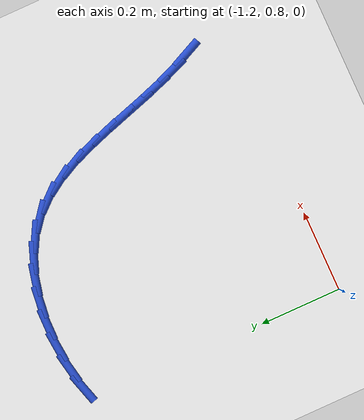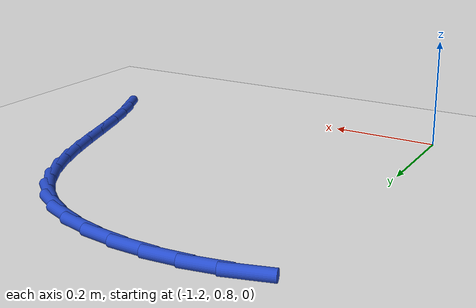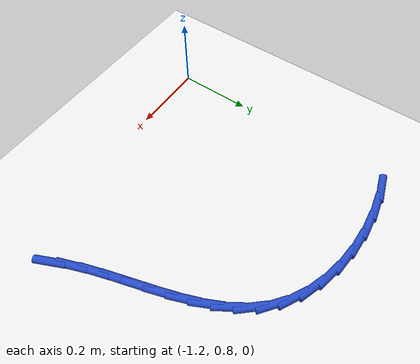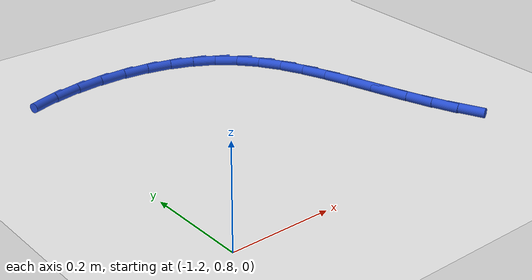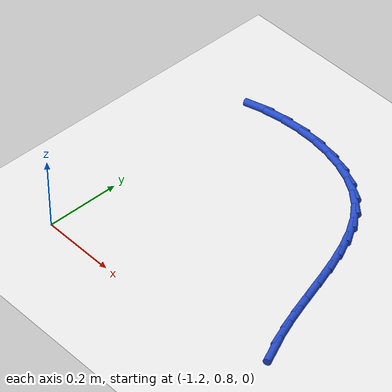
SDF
<sdf version="1.6">
 <world name="default">
  <model name="ground_plane">
   <static>1</static>
   <link name="link">
    <collision name="collision">
     <geometry><plane><normal>0 0 1</normal><size>100 100</size></plane></geometry>
     <surface><friction><ode><mu>100</mu><mu2>50</mu2></ode></friction></surface>
    </collision>
    <visual name="visual">
     <cast_shadows>0</cast_shadows>
     <geometry><plane><normal>0 0 1</normal><size>100 100</size></plane></geometry>
     <material>
      <script><uri>file://media/materials/scripts/gazebo.material</uri><name>Gazebo/WhiteGlow</name></script>
     </material>
    </visual>
   </link>
  </model>
  <model name="line">
   <link name="link_21">
    <pose>-0.5409754587103622 0.8979990045110348 0.01 0 1.57 -1.139596820807599</pose>
    <collision name="collision">
     <geometry><cylinder><radius>0.01</radius><length>0.08</length></cylinder></geometry>
    </collision>
    <visual name="visual">
     <material>
      <script><name>Gazebo/Blue</name><uri>file://media/materials/scripts/gazebo.material</uri></script>
     </material>
     <geometry><cylinder><radius>0.01</radius><length>0.08</length></cylinder></geometry>
    </visual>
   </link>
   <link name="link_22">
    <pose>-0.5632345159282068 0.9463805156341539 0.01 0 1.57 -1.208715671980354</pose>
    <collision name="collision">
     <geometry><cylinder><radius>0.01</radius><length>0.08</length></cylinder></geometry>
    </collision>
    <visual name="visual">
     <material>
      <script><name>Gazebo/Blue</name><uri>file://media/materials/scripts/gazebo.material</uri></script>
     </material>
     <geometry><cylinder><radius>0.01</radius><length>0.08</length></cylinder></geometry>
    </visual>
   </link>
   <link name="link_23">
    <pose>-0.5823895416364918 0.9969508144027122 0.01 0 1.57 -1.2523751088850654</pose>
    <collision name="collision">
     <geometry><cylinder><radius>0.01</radius><length>0.08</length></cylinder></geometry>
    </collision>
    <visual name="visual">
     <material>
      <script><name>Gazebo/Blue</name><uri>file://media/materials/scripts/gazebo.material</uri></script>
     </material>
     <geometry><cylinder><radius>0.01</radius><length>0.08</length></cylinder></geometry>
    </visual>
   </link>
   <link name="link_24">
    <pose>-0.5994873108480153 1.0488191094098702 0.01 0 1.57 -1.2722533842479706</pose>
    <collision name="collision">
     <geometry><cylinder><radius>0.01</radius><length>0.08</length></cylinder></geometry>
    </collision>
    <visual name="visual">
     <material>
      <script><name>Gazebo/Blue</name><uri>file://media/materials/scripts/gazebo.material</uri></script>
     </material>
     <geometry><cylinder><radius>0.01</radius><length>0.08</length></cylinder></geometry>
    </visual>
   </link>
   <link name="link_25">
    <pose>-0.6155745985755753 1.101094609248789 0.01 0 1.57 -1.2689917160222215</pose>
    <collision name="collision">
     <geometry><cylinder><radius>0.01</radius><length>0.08</length></cylinder></geometry>
    </collision>
    <visual name="visual">
     <material>
      <script><name>Gazebo/Blue</name><uri>file://media/materials/scripts/gazebo.material</uri></script>
     </material>
     <geometry><cylinder><radius>0.01</radius><length>0.08</length></cylinder></geometry>
    </visual>
   </link>
   <link name="link_26">
    <pose>-0.6316981798319699 1.152886522512628 0.01 0 1.57 -1.2419081788691613</pose>
    <collision name="collision">
     <geometry><cylinder><radius>0.01</radius><length>0.08</length></cylinder></geometry>
    </collision>
    <visual name="visual">
     <material>
      <script><name>Gazebo/Blue</name><uri>file://media/materials/scripts/gazebo.material</uri></script>
     </material>
     <geometry><cylinder><radius>0.01</radius><length>0.08</length></cylinder></geometry>
    </visual>
   </link>
   <link name="link_27">
    <pose>-0.6489048296299971 1.2033040577945489 0.01 0 1.57 -1.188938168429718</pose>
    <collision name="collision">
     <geometry><cylinder><radius>0.01</radius><length>0.08</length></cylinder></geometry>
    </collision>
    <visual name="visual">
     <material>
      <script><name>Gazebo/Blue</name><uri>file://media/materials/scripts/gazebo.material</uri></script>
     </material>
     <geometry><cylinder><radius>0.01</radius><length>0.08</length></cylinder></geometry>
    </visual>
   </link>
   <link name="link_28">
    <pose>-0.6682413229824546 1.2514564236877113 0.01 0 1.57 -1.106883676269616</pose>
    <collision name="collision">
     <geometry><cylinder><radius>0.01</radius><length>0.08</length></cylinder></geometry>
    </collision>
    <visual name="visual">
     <material>
      <script><name>Gazebo/Blue</name><uri>file://media/materials/scripts/gazebo.material</uri></script>
     </material>
     <geometry><cylinder><radius>0.01</radius><length>0.08</length></cylinder></geometry>
    </visual>
   </link>
   <link name="link_29">
    <pose>-0.690754434902141 1.296452828785276 0.01 0 1.57 -0.9923769735052378</pose>
    <collision name="collision">
     <geometry><cylinder><radius>0.01</radius><length>0.08</length></cylinder></geometry>
    </collision>
    <visual name="visual">
     <material>
      <script><name>Gazebo/Blue</name><uri>file://media/materials/scripts/gazebo.material</uri></script>
     </material>
     <geometry><cylinder><radius>0.01</radius><length>0.08</length></cylinder></geometry>
    </visual>
   </link>
   <link name="link_30">
    <pose>-0.717490940401854 1.3374024816804035 0.01 0 1.57 -0.8442174294790669</pose>
    <collision name="collision">
     <geometry><cylinder><radius>0.01</radius><length>0.08</length></cylinder></geometry>
    </collision>
    <visual name="visual">
     <material>
      <script><name>Gazebo/Blue</name><uri>file://media/materials/scripts/gazebo.material</uri></script>
     </material>
     <geometry><cylinder><radius>0.01</radius><length>0.08</length></cylinder></geometry>
    </visual>
   </link>
   <link name="link_31">
    <pose>-0.7494976144943917 1.3734145909662545 0.01 0 1.57 -0.6690987243588585</pose>
    <collision name="collision">
     <geometry><cylinder><radius>0.01</radius><length>0.08</length></cylinder></geometry>
    </collision>
    <visual name="visual">
     <material>
      <script><name>Gazebo/Blue</name><uri>file://media/materials/scripts/gazebo.material</uri></script>
     </material>
     <geometry><cylinder><radius>0.01</radius><length>0.08</length></cylinder></geometry>
    </visual>
   </link>
   <link name="link_32">
    <pose>-0.7877231225606998 1.403642873394109 0.01 0 1.57 -0.5000693617341696</pose>
    <collision name="collision">
     <geometry><cylinder><radius>0.01</radius><length>0.08</length></cylinder></geometry>
    </collision>
    <visual name="visual">
     <material>
      <script><name>Gazebo/Blue</name><uri>file://media/materials/scripts/gazebo.material</uri></script>
     </material>
     <geometry><cylinder><radius>0.01</radius><length>0.08</length></cylinder></geometry>
    </visual>
   </link>
   <link name="link_33">
    <pose>-0.83191196109078 1.4277873258142504 0.01 0 1.57 -0.3537444397103643</pose>
    <collision name="collision">
     <geometry><cylinder><radius>0.01</radius><length>0.08</length></cylinder></geometry>
    </collision>
    <visual name="visual">
     <material>
      <script><name>Gazebo/Blue</name><uri>file://media/materials/scripts/gazebo.material</uri></script>
     </material>
     <geometry><cylinder><radius>0.01</radius><length>0.08</length></cylinder></geometry>
    </visual>
   </link>
   <link name="link_34">
    <pose>-0.8810004142499142 1.4459145965592266 0.01 0 1.57 -0.2263260969041418</pose>
    <collision name="collision">
     <geometry><cylinder><radius>0.01</radius><length>0.08</length></cylinder></geometry>
    </collision>
    <visual name="visual">
     <material>
      <script><name>Gazebo/Blue</name><uri>file://media/materials/scripts/gazebo.material</uri></script>
     </material>
     <geometry><cylinder><radius>0.01</radius><length>0.08</length></cylinder></geometry>
    </visual>
   </link>
   <link name="link_35">
    <pose>-0.9339098158405071 1.4580981163039743 0.01 0 1.57 -0.11295840158054156</pose>
    <collision name="collision">
     <geometry><cylinder><radius>0.01</radius><length>0.08</length></cylinder></geometry>
    </collision>
    <visual name="visual">
     <material>
      <script><name>Gazebo/Blue</name><uri>file://media/materials/scripts/gazebo.material</uri></script>
     </material>
     <geometry><cylinder><radius>0.01</radius><length>0.08</length></cylinder></geometry>
    </visual>
   </link>
   <link name="link_36">
    <pose>-0.9895614996649659 1.4644113157234309 0.01 0 1.57 -0.00900799272002091</pose>
    <collision name="collision">
     <geometry><cylinder><radius>0.01</radius><length>0.08</length></cylinder></geometry>
    </collision>
    <visual name="visual">
     <material>
      <script><name>Gazebo/Blue</name><uri>file://media/materials/scripts/gazebo.material</uri></script>
     </material>
     <geometry><cylinder><radius>0.01</radius><length>0.08</length></cylinder></geometry>
    </visual>
   </link>
   <link name="link_37">
    <pose>-1.046876799525695 1.4649276254925327 0.01 0 1.57 0.08969181578536496</pose>
    <collision name="collision">
     <geometry><cylinder><radius>0.01</radius><length>0.08</length></cylinder></geometry>
    </collision>
    <visual name="visual">
     <material>
      <script><name>Gazebo/Blue</name><uri>file://media/materials/scripts/gazebo.material</uri></script>
     </material>
     <geometry><cylinder><radius>0.01</radius><length>0.08</length></cylinder></geometry>
    </visual>
   </link>
   <link name="link_38">
    <pose>-1.1047770492251012 1.4597204762862173 0.01 0 1.57 0.1869201048515047</pose>
    <collision name="collision">
     <geometry><cylinder><radius>0.01</radius><length>0.08</length></cylinder></geometry>
    </collision>
    <visual name="visual">
     <material>
      <script><name>Gazebo/Blue</name><uri>file://media/materials/scripts/gazebo.material</uri></script>
     </material>
     <geometry><cylinder><radius>0.01</radius><length>0.08</length></cylinder></geometry>
    </visual>
   </link>
   <link name="link_39">
    <pose>-1.16218358256559 1.4488632987794212 0.01 0 1.57 0.28624868168233814</pose>
    <collision name="collision">
     <geometry><cylinder><radius>0.01</radius><length>0.08</length></cylinder></geometry>
    </collision>
    <visual name="visual">
     <material>
      <script><name>Gazebo/Blue</name><uri>file://media/materials/scripts/gazebo.material</uri></script>
     </material>
     <geometry><cylinder><radius>0.01</radius><length>0.08</length></cylinder></geometry>
    </visual>
   </link>
  </model>
 </world>
</sdf>
